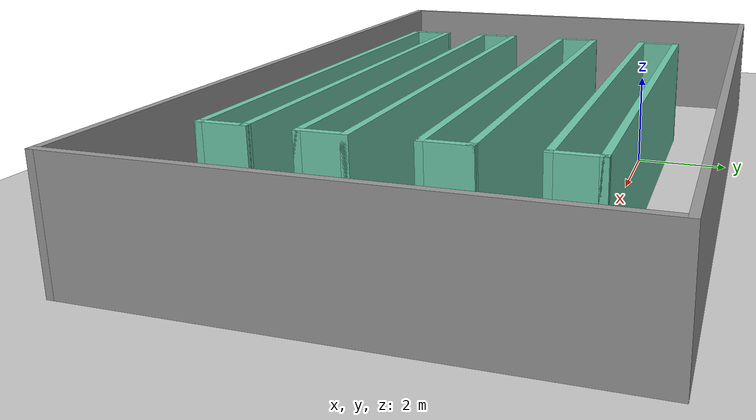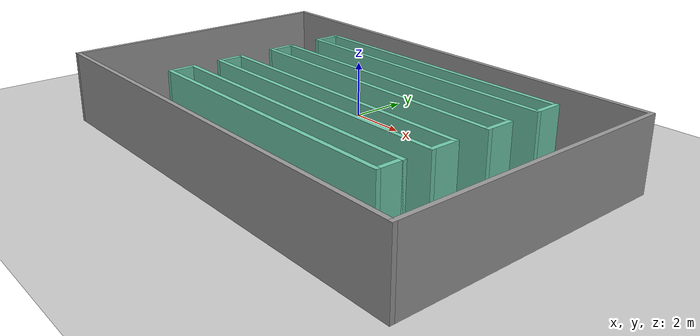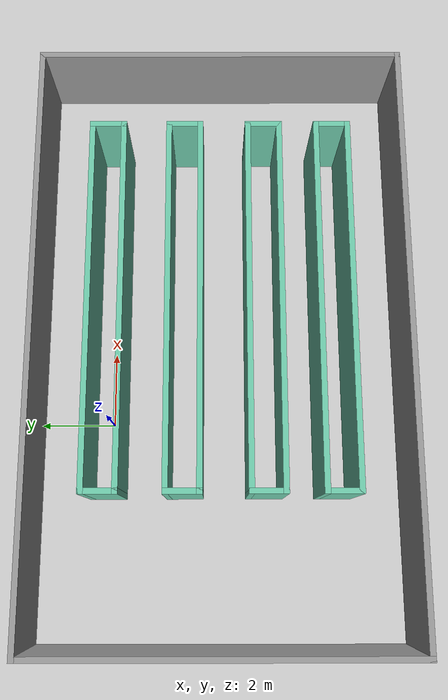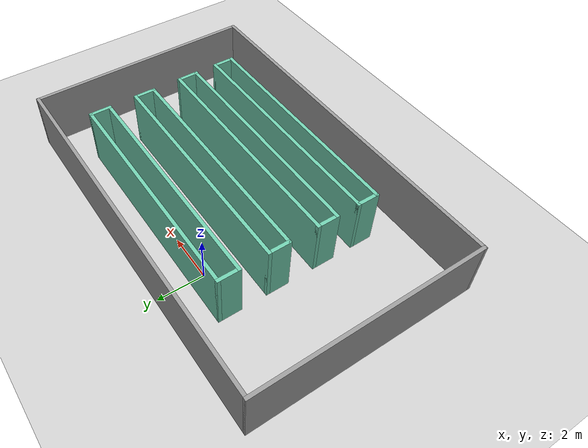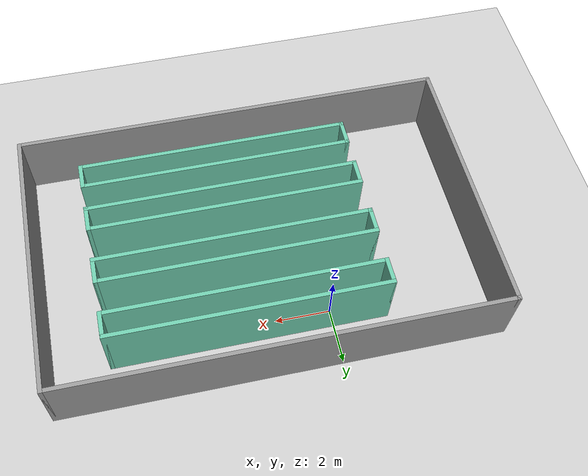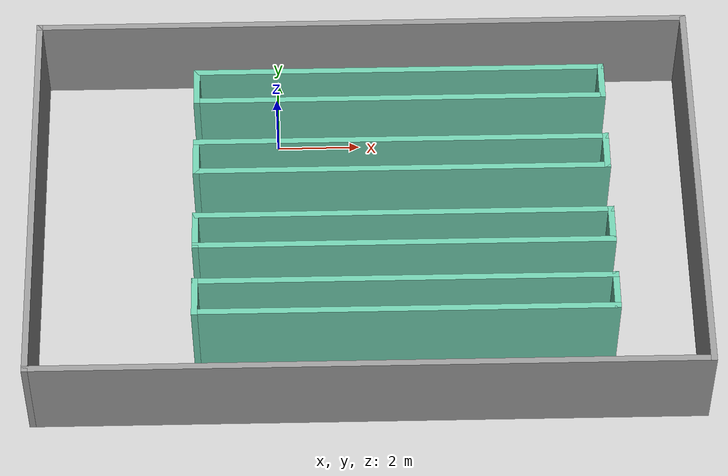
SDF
<sdf version="1.7">
 <world name="default">
  <light name="sun" type="directional">
   <pose>0 0 10 0 -0 0</pose>
   <diffuse>0.8 0.8 0.8 1</diffuse>
   <specular>0.2 0.2 0.2 1</specular>
   <attenuation>
    <range>1000</range>
    <constant>0.9</constant>
    <linear>0.01</linear>
    <quadratic>0.001</quadratic>
   </attenuation>
   <direction>-0.5 0.1 -0.9</direction>
   <spot><inner_angle>0</inner_angle><outer_angle>0</outer_angle><falloff>0</falloff></spot>
  </light>
  <model name="ground_plane">
   <static>1</static>
   <link name="link">
    <collision name="collision">
     <geometry><plane><normal>0 0 1</normal><size>100 100</size></plane></geometry>
     <surface>
      <contact><collide_bitmask>65535</collide_bitmask></contact>
      <friction><ode><mu>100</mu><mu2>50</mu2></ode></friction>
     </surface>
    </collision>
    <visual name="visual">
     <cast_shadows>0</cast_shadows>
     <geometry><plane><normal>0 0 1</normal><size>100 100</size></plane></geometry>
     <material>
      <script><uri>file://media/materials/scripts/gazebo.material</uri><name>Gazebo/Grey</name></script>
     </material>
    </visual>
   </link>
  </model>
  <gravity>0 0 -9.8</gravity>
  <magnetic_field>6e-06 2.3e-05 -4.2e-05</magnetic_field>
  <atmosphere type="adiabatic"/>
  <physics type="ode">
   <max_step_size>0.001</max_step_size>
   <real_time_factor>1</real_time_factor>
   <real_time_update_rate>1000</real_time_update_rate>
  </physics>
  <scene><ambient>0.4 0.4 0.4 1</ambient><background>0.7 0.7 0.7 1</background><shadows>1</shadows></scene>
  <spherical_coordinates>
   <surface_model>EARTH_WGS84</surface_model>
   <latitude_deg>0</latitude_deg>
   <longitude_deg>0</longitude_deg>
   <elevation>0</elevation>
   <heading_deg>0</heading_deg>
  </spherical_coordinates>
  <model name="Greenhouse_walls">
   <pose>2.10547 -2.92975 0 0 -0 0</pose>
   <link name="Wall_0">
    <collision name="Wall_0_Collision">
     <geometry><box><size>16 0.15 2.5</size></box></geometry>
     <pose>0 0 1.25 0 -0 0</pose>
    </collision>
    <visual name="Wall_0_Visual">
     <pose>0 0 1.25 0 -0 0</pose>
     <geometry><box><size>16 0.15 2.5</size></box></geometry>
     <material>
      <script><uri>file://media/materials/scripts/gazebo.material</uri><name>Gazebo/Grey</name></script>
      <ambient>1 1 1 1</ambient>
     </material>
     <meta><layer>0</layer></meta>
    </visual>
    <pose>0 4.925 0 0 -0 0</pose>
   </link>
   <link name="Wall_2">
    <collision name="Wall_2_Collision">
     <geometry><box><size>10 0.15 2.5</size></box></geometry>
     <pose>0 0 1.25 0 -0 0</pose>
    </collision>
    <visual name="Wall_2_Visual">
     <pose>0 0 1.25 0 -0 0</pose>
     <geometry><box><size>10 0.15 2.5</size></box></geometry>
     <material>
      <script><uri>file://media/materials/scripts/gazebo.material</uri><name>Gazebo/Grey</name></script>
      <ambient>1 1 1 1</ambient>
     </material>
     <meta><layer>0</layer></meta>
    </visual>
    <pose>7.925 -0 0 0 -0 -1.5708</pose>
   </link>
   <link name="Wall_3">
    <collision name="Wall_3_Collision">
     <geometry><box><size>16 0.15 2.5</size></box></geometry>
     <pose>0 0 1.25 0 -0 0</pose>
    </collision>
    <visual name="Wall_3_Visual">
     <pose>0 0 1.25 0 -0 0</pose>
     <geometry><box><size>16 0.15 2.5</size></box></geometry>
     <material>
      <script><uri>file://media/materials/scripts/gazebo.material</uri><name>Gazebo/Grey</name></script>
      <ambient>1 1 1 1</ambient>
     </material>
     <meta><layer>0</layer></meta>
    </visual>
    <pose>0 -4.925 0 0 -0 3.14159</pose>
   </link>
   <link name="Wall_4">
    <collision name="Wall_4_Collision">
     <geometry><box><size>10 0.15 2.5</size></box></geometry>
     <pose>0 0 1.25 0 -0 0</pose>
    </collision>
    <visual name="Wall_4_Visual">
     <pose>0 0 1.25 0 -0 0</pose>
     <geometry><box><size>10 0.15 2.5</size></box></geometry>
     <material>
      <script><uri>file://media/materials/scripts/gazebo.material</uri><name>Gazebo/Grey</name></script>
      <ambient>1 1 1 1</ambient>
     </material>
     <meta><layer>0</layer></meta>
    </visual>
    <pose>-7.925 -0 0 0 -0 1.5708</pose>
   </link>
   <static>1</static>
  </model>
  <model name="carril_basico_v2">
   <pose>2.98926 0.602262 0 0 -0 0</pose>
   <link name="Wall_1">
    <collision name="Wall_1_Collision">
     <geometry><box><size>10 0.15 2.5</size></box></geometry>
     <pose>0 0 1.25 0 -0 0</pose>
    </collision>
    <visual name="Wall_1_Visual">
     <pose>0 0 1.25 0 -0 0</pose>
     <geometry><box><size>10 0.15 2.5</size></box></geometry>
     <material>
      <script><uri>file://media/materials/scripts/gazebo.material</uri><name>Gazebo/Grey</name></script>
      <ambient>0.435294 0.796078 0.67451 1</ambient>
     </material>
     <meta><layer>0</layer></meta>
    </visual>
    <pose>-0 -0.0675 0 0 -0 0</pose>
   </link>
   <link name="Wall_2">
    <collision name="Wall_2_Collision">
     <geometry><box><size>1 0.15 2.5</size></box></geometry>
     <pose>0 0 1.25 0 -0 0</pose>
    </collision>
    <visual name="Wall_2_Visual">
     <pose>0 0 1.25 0 -0 0</pose>
     <geometry><box><size>1 0.15 2.5</size></box></geometry>
     <material>
      <script><uri>file://media/materials/scripts/gazebo.material</uri><name>Gazebo/Grey</name></script>
      <ambient>0.435294 0.796078 0.67451 1</ambient>
     </material>
     <meta><layer>0</layer></meta>
    </visual>
    <pose>4.925 -0.4925 0 0 -0 -1.5708</pose>
   </link>
   <link name="Wall_3">
    <collision name="Wall_3_Collision">
     <geometry><box><size>10 0.15 2.5</size></box></geometry>
     <pose>0 0 1.25 0 -0 0</pose>
    </collision>
    <visual name="Wall_3_Visual">
     <pose>0 0 1.25 0 -0 0</pose>
     <geometry><box><size>10 0.15 2.5</size></box></geometry>
     <material>
      <script><uri>file://media/materials/scripts/gazebo.material</uri><name>Gazebo/Grey</name></script>
      <ambient>0.435294 0.796078 0.67451 1</ambient>
     </material>
     <meta><layer>0</layer></meta>
    </visual>
    <pose>-0 -0.9175 0 0 -0 3.14159</pose>
   </link>
   <link name="Wall_5">
    <collision name="Wall_5_Collision">
     <geometry><box><size>1 0.15 2.5</size></box></geometry>
     <pose>0 0 1.25 0 -0 0</pose>
    </collision>
    <visual name="Wall_5_Visual">
     <pose>0 0 1.25 0 -0 0</pose>
     <geometry><box><size>1 0.15 2.5</size></box></geometry>
     <material>
      <script><uri>file://media/materials/scripts/gazebo.material</uri><name>Gazebo/Grey</name></script>
      <ambient>0.435294 0.796078 0.67451 1</ambient>
     </material>
     <meta><layer>0</layer></meta>
    </visual>
    <pose>-4.925 -0.4925 0 0 -0 -1.5708</pose>
   </link>
   <static>1</static>
  </model>
  <model name="carril_basico_v2_clone">
   <pose>2.98926 -1.47471 0 0 -0 0</pose>
   <link name="Wall_1">
    <collision name="Wall_1_Collision">
     <geometry><box><size>10 0.15 2.5</size></box></geometry>
     <pose>0 0 1.25 0 -0 0</pose>
    </collision>
    <visual name="Wall_1_Visual">
     <pose>0 0 1.25 0 -0 0</pose>
     <geometry><box><size>10 0.15 2.5</size></box></geometry>
     <material>
      <script><uri>file://media/materials/scripts/gazebo.material</uri><name>Gazebo/Grey</name></script>
      <ambient>0.435294 0.796078 0.67451 1</ambient>
     </material>
     <meta><layer>0</layer></meta>
    </visual>
    <pose>-0 -0.0675 0 0 -0 0</pose>
   </link>
   <link name="Wall_2">
    <collision name="Wall_2_Collision">
     <geometry><box><size>1 0.15 2.5</size></box></geometry>
     <pose>0 0 1.25 0 -0 0</pose>
    </collision>
    <visual name="Wall_2_Visual">
     <pose>0 0 1.25 0 -0 0</pose>
     <geometry><box><size>1 0.15 2.5</size></box></geometry>
     <material>
      <script><uri>file://media/materials/scripts/gazebo.material</uri><name>Gazebo/Grey</name></script>
      <ambient>0.435294 0.796078 0.67451 1</ambient>
     </material>
     <meta><layer>0</layer></meta>
    </visual>
    <pose>4.925 -0.4925 0 0 -0 -1.5708</pose>
   </link>
   <link name="Wall_3">
    <collision name="Wall_3_Collision">
     <geometry><box><size>10 0.15 2.5</size></box></geometry>
     <pose>0 0 1.25 0 -0 0</pose>
    </collision>
    <visual name="Wall_3_Visual">
     <pose>0 0 1.25 0 -0 0</pose>
     <geometry><box><size>10 0.15 2.5</size></box></geometry>
     <material>
      <script><uri>file://media/materials/scripts/gazebo.material</uri><name>Gazebo/Grey</name></script>
      <ambient>0.435294 0.796078 0.67451 1</ambient>
     </material>
     <meta><layer>0</layer></meta>
    </visual>
    <pose>-0 -0.9175 0 0 -0 3.14159</pose>
   </link>
   <link name="Wall_5">
    <collision name="Wall_5_Collision">
     <geometry><box><size>1 0.15 2.5</size></box></geometry>
     <pose>0 0 1.25 0 -0 0</pose>
    </collision>
    <visual name="Wall_5_Visual">
     <pose>0 0 1.25 0 -0 0</pose>
     <geometry><box><size>1 0.15 2.5</size></box></geometry>
     <material>
      <script><uri>file://media/materials/scripts/gazebo.material</uri><name>Gazebo/Grey</name></script>
      <ambient>0.435294 0.796078 0.67451 1</ambient>
     </material>
     <meta><layer>0</layer></meta>
    </visual>
    <pose>-4.925 -0.4925 0 0 -0 -1.5708</pose>
   </link>
   <static>1</static>
  </model>
  <model name="carril_basico_v2_clone_0">
   <pose>2.98926 -3.60743 0 0 -0 0</pose>
   <link name="Wall_1">
    <collision name="Wall_1_Collision">
     <geometry><box><size>10 0.15 2.5</size></box></geometry>
     <pose>0 0 1.25 0 -0 0</pose>
    </collision>
    <visual name="Wall_1_Visual">
     <pose>0 0 1.25 0 -0 0</pose>
     <geometry><box><size>10 0.15 2.5</size></box></geometry>
     <material>
      <script><uri>file://media/materials/scripts/gazebo.material</uri><name>Gazebo/Grey</name></script>
      <ambient>0.435294 0.796078 0.67451 1</ambient>
     </material>
     <meta><layer>0</layer></meta>
    </visual>
    <pose>-0 -0.0675 0 0 -0 0</pose>
   </link>
   <link name="Wall_2">
    <collision name="Wall_2_Collision">
     <geometry><box><size>1 0.15 2.5</size></box></geometry>
     <pose>0 0 1.25 0 -0 0</pose>
    </collision>
    <visual name="Wall_2_Visual">
     <pose>0 0 1.25 0 -0 0</pose>
     <geometry><box><size>1 0.15 2.5</size></box></geometry>
     <material>
      <script><uri>file://media/materials/scripts/gazebo.material</uri><name>Gazebo/Grey</name></script>
      <ambient>0.435294 0.796078 0.67451 1</ambient>
     </material>
     <meta><layer>0</layer></meta>
    </visual>
    <pose>4.925 -0.4925 0 0 -0 -1.5708</pose>
   </link>
   <link name="Wall_3">
    <collision name="Wall_3_Collision">
     <geometry><box><size>10 0.15 2.5</size></box></geometry>
     <pose>0 0 1.25 0 -0 0</pose>
    </collision>
    <visual name="Wall_3_Visual">
     <pose>0 0 1.25 0 -0 0</pose>
     <geometry><box><size>10 0.15 2.5</size></box></geometry>
     <material>
      <script><uri>file://media/materials/scripts/gazebo.material</uri><name>Gazebo/Grey</name></script>
      <ambient>0.435294 0.796078 0.67451 1</ambient>
     </material>
     <meta><layer>0</layer></meta>
    </visual>
    <pose>-0 -0.9175 0 0 -0 3.14159</pose>
   </link>
   <link name="Wall_5">
    <collision name="Wall_5_Collision">
     <geometry><box><size>1 0.15 2.5</size></box></geometry>
     <pose>0 0 1.25 0 -0 0</pose>
    </collision>
    <visual name="Wall_5_Visual">
     <pose>0 0 1.25 0 -0 0</pose>
     <geometry><box><size>1 0.15 2.5</size></box></geometry>
     <material>
      <script><uri>file://media/materials/scripts/gazebo.material</uri><name>Gazebo/Grey</name></script>
      <ambient>0.435294 0.796078 0.67451 1</ambient>
     </material>
     <meta><layer>0</layer></meta>
    </visual>
    <pose>-4.925 -0.4925 0 0 -0 -1.5708</pose>
   </link>
   <static>1</static>
  </model>
  <model name="carril_basico_v2_clone_1">
   <pose>2.98926 -5.4628 0 0 -0 0</pose>
   <link name="Wall_1">
    <collision name="Wall_1_Collision">
     <geometry><box><size>10 0.15 2.5</size></box></geometry>
     <pose>0 0 1.25 0 -0 0</pose>
    </collision>
    <visual name="Wall_1_Visual">
     <pose>0 0 1.25 0 -0 0</pose>
     <geometry><box><size>10 0.15 2.5</size></box></geometry>
     <material>
      <script><uri>file://media/materials/scripts/gazebo.material</uri><name>Gazebo/Grey</name></script>
      <ambient>0.435294 0.796078 0.67451 1</ambient>
     </material>
     <meta><layer>0</layer></meta>
    </visual>
    <pose>-0 -0.0675 0 0 -0 0</pose>
   </link>
   <link name="Wall_2">
    <collision name="Wall_2_Collision">
     <geometry><box><size>1 0.15 2.5</size></box></geometry>
     <pose>0 0 1.25 0 -0 0</pose>
    </collision>
    <visual name="Wall_2_Visual">
     <pose>0 0 1.25 0 -0 0</pose>
     <geometry><box><size>1 0.15 2.5</size></box></geometry>
     <material>
      <script><uri>file://media/materials/scripts/gazebo.material</uri><name>Gazebo/Grey</name></script>
      <ambient>0.435294 0.796078 0.67451 1</ambient>
     </material>
     <meta><layer>0</layer></meta>
    </visual>
    <pose>4.925 -0.4925 0 0 -0 -1.5708</pose>
   </link>
   <link name="Wall_3">
    <collision name="Wall_3_Collision">
     <geometry><box><size>10 0.15 2.5</size></box></geometry>
     <pose>0 0 1.25 0 -0 0</pose>
    </collision>
    <visual name="Wall_3_Visual">
     <pose>0 0 1.25 0 -0 0</pose>
     <geometry><box><size>10 0.15 2.5</size></box></geometry>
     <material>
      <script><uri>file://media/materials/scripts/gazebo.material</uri><name>Gazebo/Grey</name></script>
      <ambient>0.435294 0.796078 0.67451 1</ambient>
     </material>
     <meta><layer>0</layer></meta>
    </visual>
    <pose>-0 -0.9175 0 0 -0 3.14159</pose>
   </link>
   <link name="Wall_5">
    <collision name="Wall_5_Collision">
     <geometry><box><size>1 0.15 2.5</size></box></geometry>
     <pose>0 0 1.25 0 -0 0</pose>
    </collision>
    <visual name="Wall_5_Visual">
     <pose>0 0 1.25 0 -0 0</pose>
     <geometry><box><size>1 0.15 2.5</size></box></geometry>
     <material>
      <script><uri>file://media/materials/scripts/gazebo.material</uri><name>Gazebo/Grey</name></script>
      <ambient>0.435294 0.796078 0.67451 1</ambient>
     </material>
     <meta><layer>0</layer></meta>
    </visual>
    <pose>-4.925 -0.4925 0 0 -0 -1.5708</pose>
   </link>
   <static>1</static>
  </model>
 </world>
</sdf>
